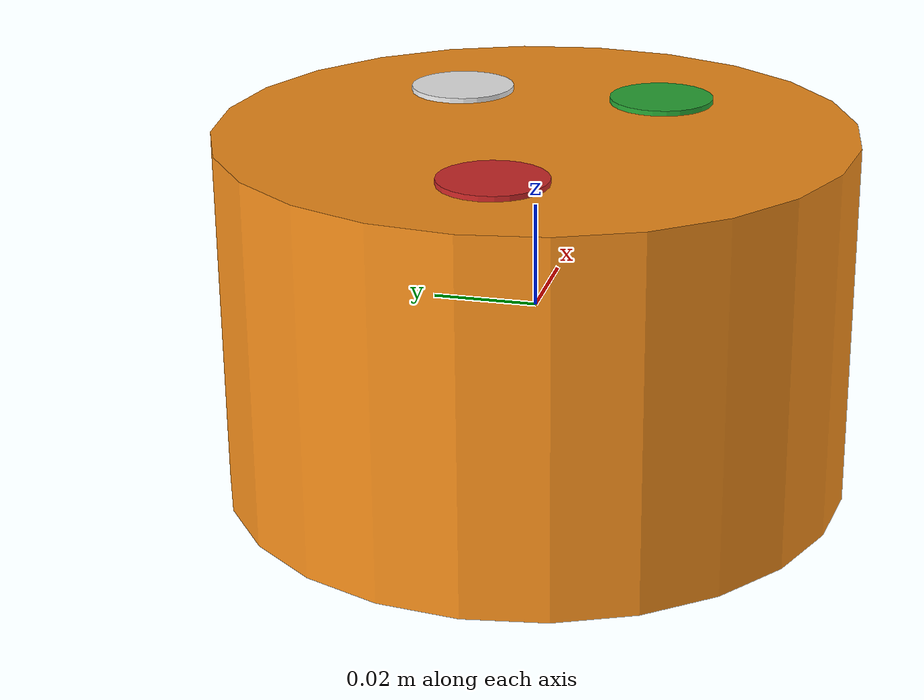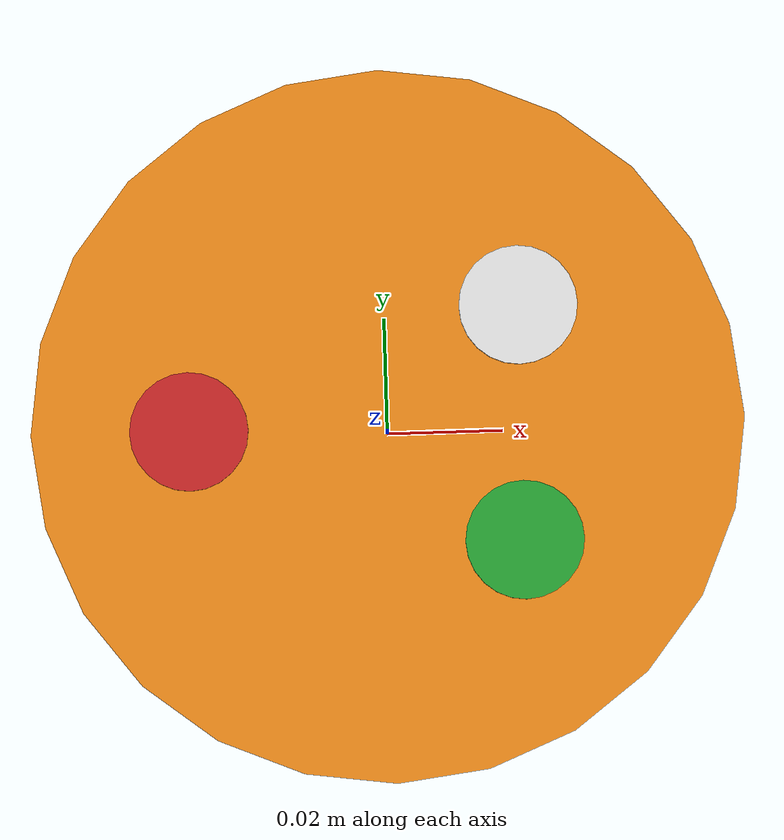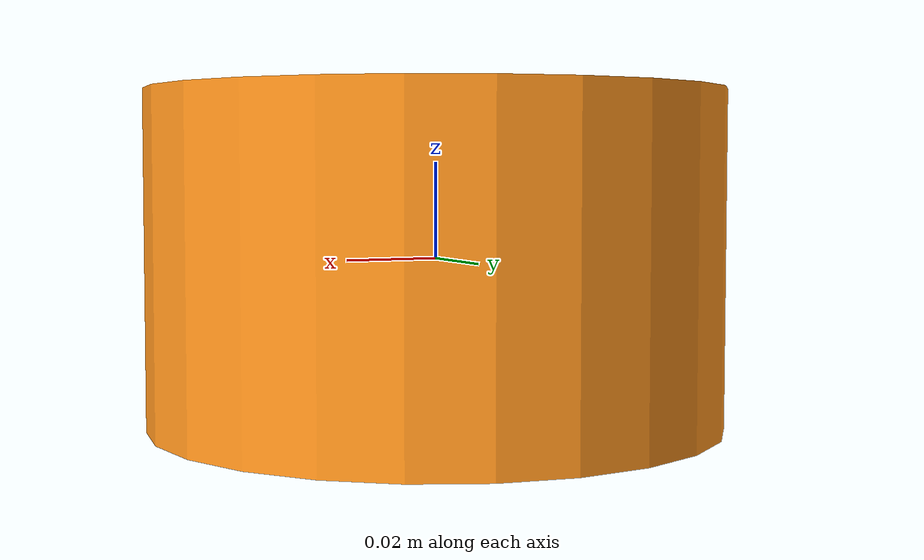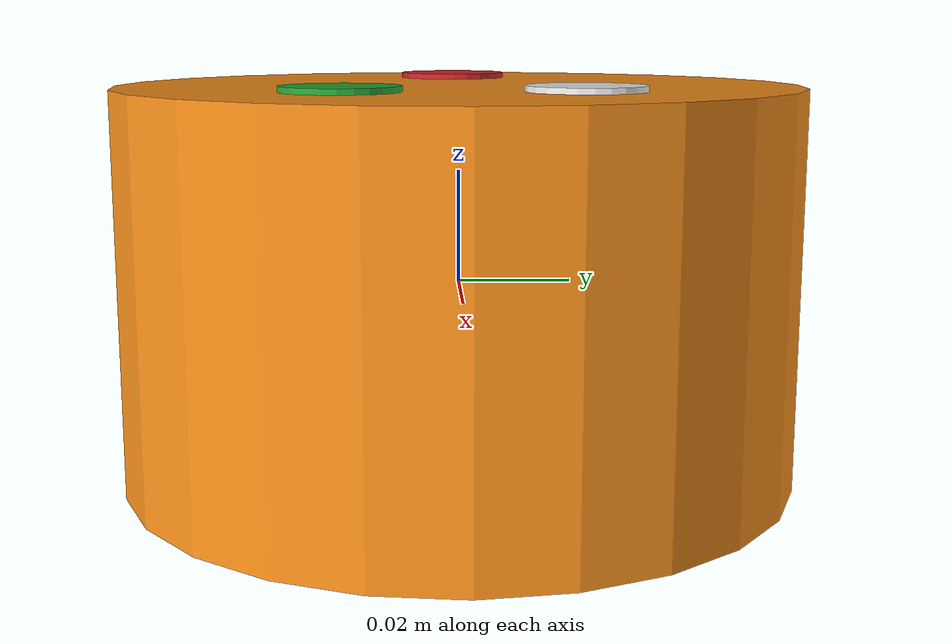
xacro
<?xml version="1.0"?>
<robot xmlns:xacro="http://www.ros.org/wiki/xacro">
  <xacro:include filename="inertial_macros.xacro"/>
  <xacro:include filename="materials.xacro"/>

  <xacro:property name="chassis_radius" value="0.06"/>
  <xacro:property name="chassis_height" value="0.07"/>

  <xacro:property name="led_radius" value="0.01"/>
  <xacro:property name="led_height" value="0.001"/>

  <link name="base_link"></link>
  <link name="footprint_link"></link>
  <link name="chassis_link">
    <visual>
      <geometry>
        <cylinder radius="${chassis_radius}" length="${chassis_height}"/>
      </geometry>
    </visual>
    <collision>
      <geometry>
        <cylinder radius="${chassis_radius}" length="${chassis_height}"/>
      </geometry>
    </collision>
    <xacro:inertial_cylinder mass="0.1" radius="${chassis_radius}" length="${chassis_height}">
      <origin xyz="0 0 0" rpy="0 0 0"/>
    </xacro:inertial_cylinder>
  </link>

  <link name="led_red_link">
    <visual>
      <geometry>
        <cylinder radius="${led_radius}" length="${led_height}"/>
      </geometry>
    </visual>
  </link>

  <link name="led_green_link">
    <visual>
      <geometry>
        <cylinder radius="${led_radius}" length="${led_height}"/>
      </geometry>
    </visual>
  </link>

  <link name="led_blue_link">
    <visual>
      <geometry>
        <cylinder radius="${led_radius}" length="${led_height}"/>
      </geometry>
      <material name="white"/>
    </visual>
  </link>

  <joint name="footprint_joint" type="fixed">
    <parent link="base_link"/>
    <child link="footprint_link"/>
    <origin xyz="0.0 0.0 -${chassis_height/2}"/>
  </joint>

  <joint name="chassis_joint" type="fixed">
    <parent link="base_link"/>
    <child link="chassis_link"/>
    <origin xyz="0.0 0.0 0.0"/>
  </joint>

  <joint name="led_red_joint" type="fixed">
    <parent link="base_link"/>
    <child link="led_red_link"/>
    <origin xyz="-0.0334 0.0 ${(chassis_height + led_height)/2}"/>
  </joint>

  <joint name="led_green_joint" type="fixed">
    <parent link="base_link"/>
    <child link="led_green_link"/>
    <origin xyz="0.0225 -0.01975 ${(chassis_height + led_height)/2}"/>
  </joint>

  <joint name="led_blue_joint" type="fixed">
    <parent link="base_link"/>
    <child link="led_blue_link"/>
    <origin xyz="0.0225 0.01975 ${(chassis_height + led_height)/2}"/>
  </joint>

  <gazebo reference="chassis_link">
    <material>Gazebo/Orange</material>
  </gazebo>

  <gazebo reference="led_red_link">
    <material>Gazebo/Red</material>
  </gazebo>

  <gazebo reference="led_green_link">
    <material>Gazebo/Green</material>
  </gazebo>

  <gazebo reference="led_blue_link">
    <material>Gazebo/Blue</material>
  </gazebo>
</robot>

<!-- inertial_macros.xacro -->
<robot xmlns:xacro="http://www.ros.org/wiki/xacro" >

    <!-- Specify some standard inertial calculations https://en.wikipedia.org/wiki/List_of_moments_of_inertia -->
    <!-- These make use of xacro's mathematical functionality -->

    <xacro:macro name="inertial_sphere" params="mass radius *origin">
        <inertial>
            <xacro:insert_block name="origin"/>
            <mass value="${mass}" />
            <inertia ixx="${(2/5) * mass * (radius*radius)}" ixy="0.0" ixz="0.0"
                    iyy="${(2/5) * mass * (radius*radius)}" iyz="0.0"
                    izz="${(2/5) * mass * (radius*radius)}" />
        </inertial>
    </xacro:macro>

    <xacro:macro name="inertial_box" params="mass x y z *origin">
        <inertial>
            <xacro:insert_block name="origin"/>
            <mass value="${mass}" />
            <inertia ixx="${(1/12) * mass * (y*y+z*z)}" ixy="0.0" ixz="0.0"
                    iyy="${(1/12) * mass * (x*x+z*z)}" iyz="0.0"
                    izz="${(1/12) * mass * (x*x+y*y)}" />
        </inertial>
    </xacro:macro>

    <xacro:macro name="inertial_cylinder" params="mass length radius *origin">
        <inertial>
            <xacro:insert_block name="origin"/>
            <mass value="${mass}" />
            <inertia ixx="${(1/12) * mass * (3*radius*radius + length*length)}" ixy="0.0" ixz="0.0"
                    iyy="${(1/12) * mass * (3*radius*radius + length*length)}" iyz="0.0"
                    izz="${(1/2) * mass * (radius*radius)}" />
        </inertial>
    </xacro:macro>
</robot>
